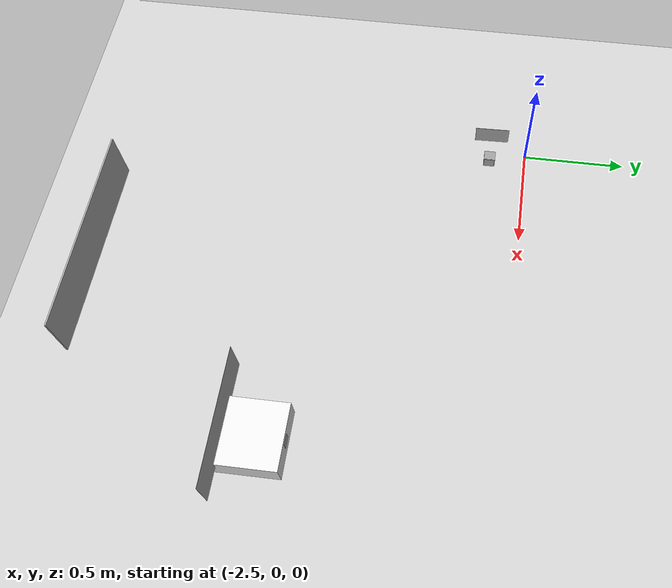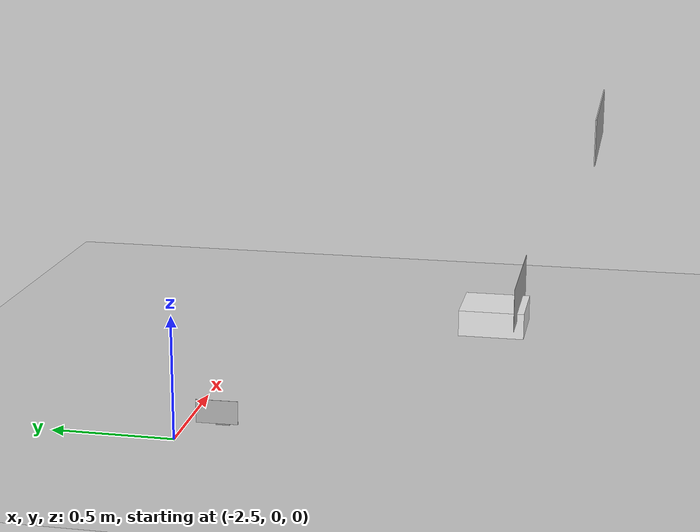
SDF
<sdf version="1.6">
 <world name="default">
  <model name="ground_plane">
   <static>1</static>
   <link name="link">
    <collision name="collision">
     <geometry><plane><normal>0 0 1</normal><size>100 100</size></plane></geometry>
     <surface><friction><ode><mu>100</mu><mu2>50</mu2></ode></friction></surface>
    </collision>
    <visual name="visual">
     <cast_shadows>0</cast_shadows>
     <geometry><plane><normal>0 0 1</normal><size>100 100</size></plane></geometry>
     <material>
      <script><uri>file://media/materials/scripts/gazebo.material</uri><name>Gazebo/Grey</name></script>
     </material>
    </visual>
   </link>
  </model>
  <model name="ar_box0_50">
   <link name="link_0">
    <inertial>
     <mass>1.87342e-05</mass>
     <inertia>
      <ixx>9.25984e-08</ixx>
      <ixy>0</ixy>
      <ixz>0</ixz>
      <iyy>1.0155e-07</iyy>
      <iyz>0</iyz>
      <izz>1.22113e-07</izz>
     </inertia>
    </inertial>
    <visual name="visual">
     <geometry><box><size>0.05 0.05 0.05</size></box></geometry>
     <material>
      <lighting>1</lighting>
      <script>
       <uri>model://ar_box0_50/materials/scripts</uri>
       <uri>model://ar_box0_50/materials/textures</uri>
       <name>ArBox050/Image</name>
      </script>
      <ambient>0.3 0.3 0.3 1</ambient>
      <diffuse>0.7 0.7 0.7 1</diffuse>
      <specular>0.01 0.01 0.01 1</specular>
      <emissive>1 1 1 1</emissive>
     </material>
     <cast_shadows>0</cast_shadows>
    </visual>
   </link>
   <static>1</static>
   <pose>-2.41284 -0.18084 0.076685 0.005535 -1.6e-05 3.14155</pose>
  </model>
  <model name="reinovo">
   <link name="link_0">
    <inertial>
     <mass>1</mass>
     <inertia>
      <ixx>0.166667</ixx>
      <ixy>0</ixy>
      <ixz>0</ixz>
      <iyy>0.166667</iyy>
      <iyz>0</iyz>
      <izz>0.166667</izz>
     </inertia>
    </inertial>
    <visual name="visual">
     <geometry><box><size>0.728541 0.005 0.191799</size></box></geometry>
     <material>
      <lighting>1</lighting>
      <script>
       <uri>model://reinovo/materials/scripts</uri>
       <uri>model://reinovo/materials/textures</uri>
       <name>Reinovo/Image</name>
      </script>
      <ambient>0.3 0.3 0.3 1</ambient>
      <diffuse>0.7 0.7 0.7 1</diffuse>
      <specular>0.01 0.01 0.01 1</specular>
      <emissive>0 0 0 1</emissive>
      <shader type="vertex"><normal_map>__default__</normal_map></shader>
     </material>
    </visual>
    <collision name="collision">
     <geometry><box><size>0.026983 0.01 0.0159053</size></box></geometry>
     <surface>
      <friction>
       <ode><mu>1</mu><mu2>1</mu2><fdir1>0 0 0</fdir1><slip1>0</slip1><slip2>0</slip2></ode>
       <torsional>
        <coefficient>1</coefficient>
        <patch_radius>0</patch_radius>
        <surface_radius>0</surface_radius>
        <use_patch_radius>1</use_patch_radius>
        <ode><slip>0</slip></ode>
       </torsional>
      </friction>
      <bounce><restitution_coefficient>0</restitution_coefficient><threshold>1e+06</threshold></bounce>
      <contact>
       <collide_without_contact>0</collide_without_contact>
       <collide_without_contact_bitmask>1</collide_without_contact_bitmask>
       <collide_bitmask>1</collide_bitmask>
       <ode>
        <soft_cfm>0</soft_cfm>
        <soft_erp>0.2</soft_erp>
        <kp>1e+13</kp>
        <kd>1</kd>
        <max_vel>0.01</max_vel>
        <min_depth>0</min_depth>
       </ode>
       <bullet>
        <split_impulse>1</split_impulse>
        <split_impulse_penetration_threshold>-0.01</split_impulse_penetration_threshold>
        <soft_cfm>0</soft_cfm>
        <soft_erp>0.2</soft_erp>
        <kp>1e+13</kp>
        <kd>1</kd>
       </bullet>
      </contact>
     </surface>
    </collision>
   </link>
   <static>1</static>
   <pose>-1.19536 -1.5281 1.0401 0 -0 0</pose>
  </model>
  <model name="ar_box0_50_2">
   <link name="link_0">
    <inertial>
     <mass>1.87342e-05</mass>
     <inertia>
      <ixx>9.25984e-08</ixx>
      <ixy>0</ixy>
      <ixz>0</ixz>
      <iyy>1.0155e-07</iyy>
      <iyz>0</iyz>
      <izz>1.22113e-07</izz>
     </inertia>
    </inertial>
    <visual name="visual">
     <geometry><box><size>0.05 0.05 0.05</size></box></geometry>
     <material>
      <lighting>1</lighting>
      <script>
       <uri>model://ar_box0_50/materials/scripts</uri>
       <uri>model://ar_box0_50/materials/textures</uri>
       <name>ArBox050/Image</name>
      </script>
      <ambient>0.3 0.3 0.3 1</ambient>
      <diffuse>0.7 0.7 0.7 1</diffuse>
      <specular>0.01 0.01 0.01 1</specular>
      <emissive>1 1 1 1</emissive>
     </material>
     <cast_shadows>0</cast_shadows>
    </visual>
   </link>
   <static>1</static>
   <pose>-0.858636 -0.94106 0.075341 0 -0 0</pose>
  </model>
  <model name="TextEndProduct">
   <link name="link_0">
    <inertial>
     <mass>1</mass>
     <inertia>
      <ixx>0.166667</ixx>
      <ixy>0</ixy>
      <ixz>0</ixz>
      <iyy>0.166667</iyy>
      <iyz>0</iyz>
      <izz>0.166667</izz>
     </inertia>
    </inertial>
    <visual name="visual">
     <geometry><box><size>0.6 0.001 0.2</size></box></geometry>
     <material>
      <lighting>1</lighting>
      <script>
       <uri>model://Text/materials/scripts</uri>
       <uri>model://Text/materials/textures</uri>
       <name>EndProduct/Image</name>
      </script>
      <ambient>0.3 0.3 0.3 1</ambient>
      <diffuse>0.7 0.7 0.7 1</diffuse>
      <specular>0.01 0.01 0.01 1</specular>
      <emissive>0 0 0 1</emissive>
      <shader type="vertex"><normal_map>__default__</normal_map></shader>
     </material>
     <cast_shadows>0</cast_shadows>
    </visual>
    <collision name="collision">
     <geometry><box><size>0.001 0.001 0.001</size></box></geometry>
     <surface>
      <friction>
       <ode><mu>1</mu><mu2>1</mu2><fdir1>0 0 0</fdir1><slip1>0</slip1><slip2>0</slip2></ode>
       <torsional>
        <coefficient>1</coefficient>
        <patch_radius>0</patch_radius>
        <surface_radius>0</surface_radius>
        <use_patch_radius>1</use_patch_radius>
        <ode><slip>0</slip></ode>
       </torsional>
      </friction>
      <bounce><restitution_coefficient>0</restitution_coefficient><threshold>1e+06</threshold></bounce>
      <contact>
       <collide_without_contact>0</collide_without_contact>
       <collide_without_contact_bitmask>1</collide_without_contact_bitmask>
       <collide_bitmask>1</collide_bitmask>
       <ode>
        <soft_cfm>0</soft_cfm>
        <soft_erp>0.2</soft_erp>
        <kp>1e+13</kp>
        <kd>1</kd>
        <max_vel>0.01</max_vel>
        <min_depth>0</min_depth>
       </ode>
       <bullet>
        <split_impulse>1</split_impulse>
        <split_impulse_penetration_threshold>-0.01</split_impulse_penetration_threshold>
        <soft_cfm>0</soft_cfm>
        <soft_erp>0.2</soft_erp>
        <kp>1e+13</kp>
        <kd>1</kd>
       </bullet>
      </contact>
     </surface>
    </collision>
   </link>
   <static>1</static>
   <pose>-0.871994 -1.18521 0.182501 0 -0 0</pose>
  </model>
  <model name="charge_flag_0">
   <link name="link_0">
    <inertial>
     <mass>1</mass>
     <inertia>
      <ixx>0.166667</ixx>
      <ixy>0</ixy>
      <ixz>0</ixz>
      <iyy>0.166667</iyy>
      <iyz>0</iyz>
      <izz>0.166667</izz>
     </inertia>
    </inertial>
    <visual name="visual">
     <geometry><box><size>0.165 0.001 0.094</size></box></geometry>
     <material>
      <lighting>1</lighting>
      <script>
       <uri>model://charge_flag/materials/scripts</uri>
       <uri>model://charge_flag/materials/textures</uri>
       <name>Charge/Image</name>
      </script>
      <ambient>0.3 0.3 0.3 1</ambient>
      <diffuse>0.7 0.7 0.7 1</diffuse>
      <specular>0.01 0.01 0.01 1</specular>
      <emissive>0 0 0 1</emissive>
      <shader type="vertex"><normal_map>__default__</normal_map></shader>
     </material>
    </visual>
    <collision name="collision">
     <geometry><box><size>0.001 0.001 0.001</size></box></geometry>
     <surface>
      <friction>
       <ode><mu>1</mu><mu2>1</mu2><fdir1>0 0 0</fdir1><slip1>0</slip1><slip2>0</slip2></ode>
       <torsional>
        <coefficient>1</coefficient>
        <patch_radius>0</patch_radius>
        <surface_radius>0</surface_radius>
        <use_patch_radius>1</use_patch_radius>
        <ode><slip>0</slip></ode>
       </torsional>
      </friction>
      <bounce><restitution_coefficient>0</restitution_coefficient><threshold>1e+06</threshold></bounce>
      <contact>
       <collide_without_contact>0</collide_without_contact>
       <collide_without_contact_bitmask>1</collide_without_contact_bitmask>
       <collide_bitmask>1</collide_bitmask>
       <ode>
        <soft_cfm>0</soft_cfm>
        <soft_erp>0.2</soft_erp>
        <kp>1e+13</kp>
        <kd>1</kd>
        <max_vel>0.01</max_vel>
        <min_depth>0</min_depth>
       </ode>
       <bullet>
        <split_impulse>1</split_impulse>
        <split_impulse_penetration_threshold>-0.01</split_impulse_penetration_threshold>
        <soft_cfm>0</soft_cfm>
        <soft_erp>0.2</soft_erp>
        <kp>1e+13</kp>
        <kd>1</kd>
       </bullet>
      </contact>
     </surface>
    </collision>
   </link>
   <static>1</static>
   <pose>-2.51867 -0.178672 0.132987 0 0 -1.54645</pose>
  </model>
  <model name="charge_static_3">
   <link name="link_0">
    <pose>0.001175 0.064666 -0.007829 0 -0 0</pose>
    <inertial>
     <mass>50</mass>
     <inertia>
      <ixx>0.166667</ixx>
      <ixy>0</ixy>
      <ixz>0</ixz>
      <iyy>0.166667</iyy>
      <iyz>0</iyz>
      <izz>0.166667</izz>
     </inertia>
    </inertial>
    <visual name="visual">
     <geometry><box><size>0.3 0.3 0.12</size></box></geometry>
     <material>
      <lighting>1</lighting>
      <script><uri>file://media/materials/scripts/gazebo.material</uri><name>Gazebo/White</name></script>
      <ambient>0.3 0.3 0.3 1</ambient>
      <diffuse>0.7 0.7 0.7 1</diffuse>
      <specular>0.01 0.01 0.01 1</specular>
      <emissive>0 0 1 1</emissive>
      <shader type="vertex"><normal_map>__default__</normal_map></shader>
     </material>
    </visual>
    <collision name="collision">
     <geometry><box><size>0.3 0.3 0.12</size></box></geometry>
     <surface>
      <friction><ode><mu>100</mu><mu2>50</mu2></ode></friction>
      <bounce><restitution_coefficient>0</restitution_coefficient><threshold>1e+06</threshold></bounce>
      <contact>
       <collide_without_contact>0</collide_without_contact>
       <collide_without_contact_bitmask>1</collide_without_contact_bitmask>
       <collide_bitmask>1</collide_bitmask>
       <ode>
        <soft_cfm>0</soft_cfm>
        <soft_erp>0.2</soft_erp>
        <kp>1e+13</kp>
        <kd>1</kd>
        <max_vel>0.01</max_vel>
        <min_depth>0</min_depth>
       </ode>
       <bullet>
        <split_impulse>1</split_impulse>
        <split_impulse_penetration_threshold>-0.01</split_impulse_penetration_threshold>
        <soft_cfm>0</soft_cfm>
        <soft_erp>0.2</soft_erp>
        <kp>1e+13</kp>
        <kd>1</kd>
       </bullet>
      </contact>
     </surface>
    </collision>
   </link>
   <static>1</static>
   <pose>-0.863231 -1.13255 0.068776 0 -0 0</pose>
  </model>
  <model name="ar_maker_0_5">
   <link name="link_0">
    <inertial>
     <inertia>
      <ixx>0.166667</ixx>
      <ixy>0</ixy>
      <ixz>0</ixz>
      <iyy>0.166667</iyy>
      <iyz>0</iyz>
      <izz>0.166667</izz>
     </inertia>
    </inertial>
    <visual name="visual">
     <geometry><box><size>0.055 0.055 0.049</size></box></geometry>
     <material>
      <lighting>1</lighting>
      <script><uri>file://media/materials/scripts/gazebo.material</uri><name>Gazebo/Grey</name></script>
      <ambient>0.3 0.3 0.3 1</ambient>
      <diffuse>0.7 0.7 0.7 1</diffuse>
      <specular>0.01 0.01 0.01 1</specular>
      <emissive>1 1 1 1</emissive>
      <shader type="vertex"><normal_map>__default__</normal_map></shader>
     </material>
    </visual>
   </link>
   <static>1</static>
   <pose>-2.41472 -0.180022 0.07642 3.14159 1.56301 3.14159</pose>
  </model>
 </world>
</sdf>
